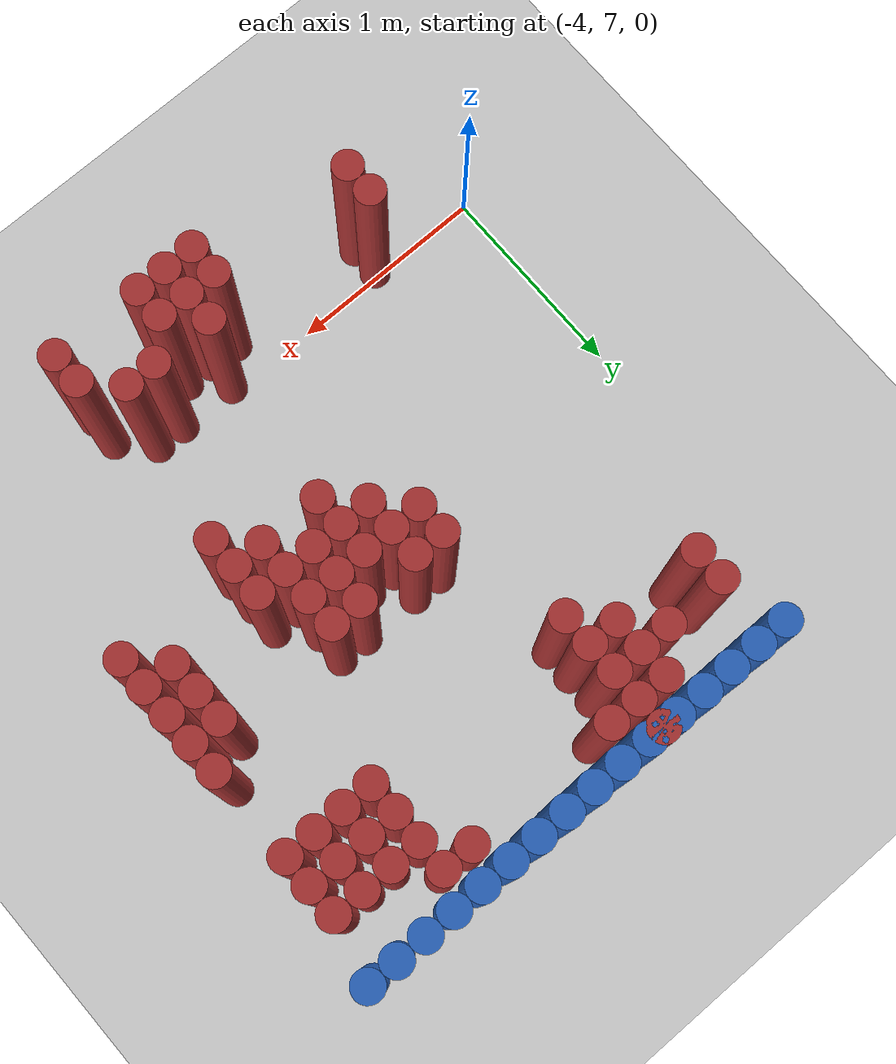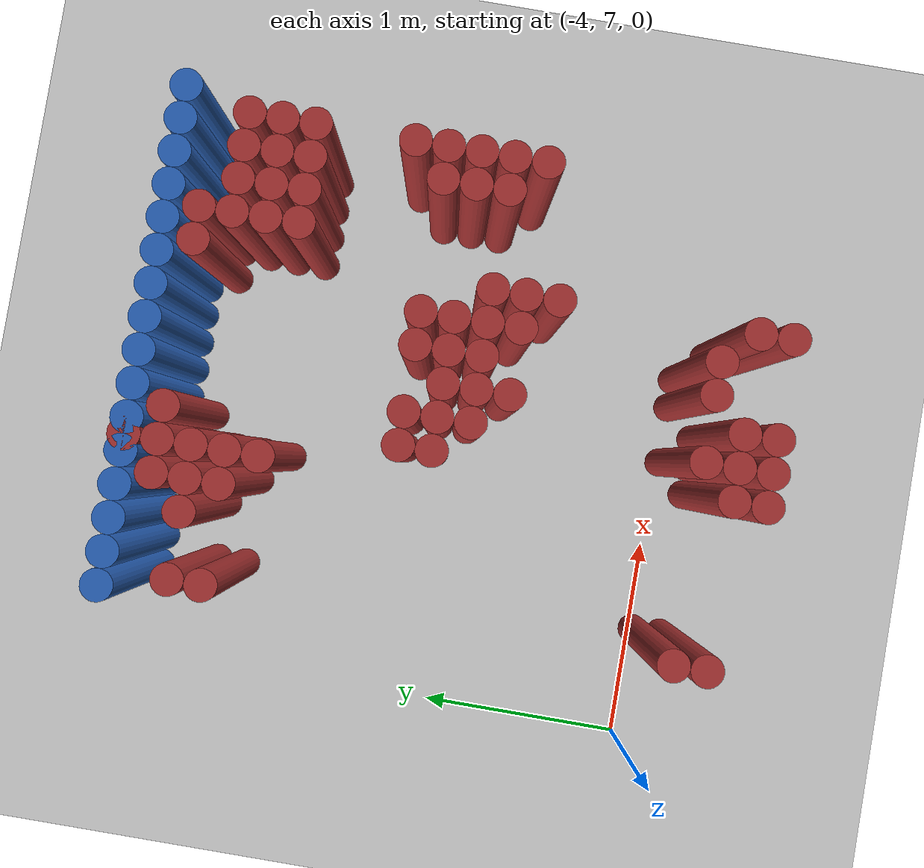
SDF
<sdf version="1.6">
 <world name="barn_world">
  <model name="ground_plane">
   <static>1</static>
   <link name="link">
    <collision name="collision">
     <geometry><plane><normal>0 0 1</normal><size>100 100</size></plane></geometry>
    </collision>
    <visual name="visual">
     <geometry><plane><normal>0 0 1</normal><size>100 100</size></plane></geometry>
     <material>
      <script><uri>file://media/materials/scripts/gazebo.material</uri><name>Gazebo/Grey</name></script>
     </material>
    </visual>
   </link>
  </model>
  <model name="unit_cylinder_227">
   <static>1</static>
   <pose>-3.4500 6.8250 0.5 0 0 0</pose>
   <link name="link">
    <collision name="collision">
     <geometry><cylinder><radius>0.075</radius><length>1</length></cylinder></geometry>
    </collision>
    <visual name="visual">
     <geometry><cylinder><radius>0.075</radius><length>1</length></cylinder></geometry>
     <material><ambient>0.648 0.192 0.192 1</ambient><diffuse>0.648 0.192 0.192 1</diffuse></material>
    </visual>
   </link>
  </model>
  <model name="unit_cylinder_228">
   <static>1</static>
   <pose>-3.4500 6.9750 0.5 0 0 0</pose>
   <link name="link">
    <collision name="collision">
     <geometry><cylinder><radius>0.075</radius><length>1</length></cylinder></geometry>
    </collision>
    <visual name="visual">
     <geometry><cylinder><radius>0.075</radius><length>1</length></cylinder></geometry>
     <material><ambient>0.648 0.192 0.192 1</ambient><diffuse>0.648 0.192 0.192 1</diffuse></material>
    </visual>
   </link>
  </model>
  <model name="unit_cylinder_229">
   <static>1</static>
   <pose>-3.4500 9.0750 0.5 0 0 0</pose>
   <link name="link">
    <collision name="collision">
     <geometry><cylinder><radius>0.075</radius><length>1</length></cylinder></geometry>
    </collision>
    <visual name="visual">
     <geometry><cylinder><radius>0.075</radius><length>1</length></cylinder></geometry>
     <material><ambient>0.648 0.192 0.192 1</ambient><diffuse>0.648 0.192 0.192 1</diffuse></material>
    </visual>
   </link>
  </model>
  <model name="unit_cylinder_230">
   <static>1</static>
   <pose>-3.4500 9.2250 0.5 0 0 0</pose>
   <link name="link">
    <collision name="collision">
     <geometry><cylinder><radius>0.075</radius><length>1</length></cylinder></geometry>
    </collision>
    <visual name="visual">
     <geometry><cylinder><radius>0.075</radius><length>1</length></cylinder></geometry>
     <material><ambient>0.648 0.192 0.192 1</ambient><diffuse>0.648 0.192 0.192 1</diffuse></material>
    </visual>
   </link>
  </model>
  <model name="unit_cylinder_231">
   <static>1</static>
   <pose>-3.1500 9.2250 0.5 0 0 0</pose>
   <link name="link">
    <collision name="collision">
     <geometry><cylinder><radius>0.075</radius><length>1</length></cylinder></geometry>
    </collision>
    <visual name="visual">
     <geometry><cylinder><radius>0.075</radius><length>1</length></cylinder></geometry>
     <material><ambient>0.648 0.192 0.192 1</ambient><diffuse>0.648 0.192 0.192 1</diffuse></material>
    </visual>
   </link>
  </model>
  <model name="unit_cylinder_235">
   <static>1</static>
   <pose>-3.0000 9.0750 0.5 0 0 0</pose>
   <link name="link">
    <collision name="collision">
     <geometry><cylinder><radius>0.075</radius><length>1</length></cylinder></geometry>
    </collision>
    <visual name="visual">
     <geometry><cylinder><radius>0.075</radius><length>1</length></cylinder></geometry>
     <material><ambient>0.648 0.192 0.192 1</ambient><diffuse>0.648 0.192 0.192 1</diffuse></material>
    </visual>
   </link>
  </model>
  <model name="unit_cylinder_236">
   <static>1</static>
   <pose>-3.0000 9.2250 0.5 0 0 0</pose>
   <link name="link">
    <collision name="collision">
     <geometry><cylinder><radius>0.075</radius><length>1</length></cylinder></geometry>
    </collision>
    <visual name="visual">
     <geometry><cylinder><radius>0.075</radius><length>1</length></cylinder></geometry>
     <material><ambient>0.648 0.192 0.192 1</ambient><diffuse>0.648 0.192 0.192 1</diffuse></material>
    </visual>
   </link>
  </model>
  <model name="unit_cylinder_237">
   <static>1</static>
   <pose>-3.0000 9.3750 0.5 0 0 0</pose>
   <link name="link">
    <collision name="collision">
     <geometry><cylinder><radius>0.075</radius><length>1</length></cylinder></geometry>
    </collision>
    <visual name="visual">
     <geometry><cylinder><radius>0.075</radius><length>1</length></cylinder></geometry>
     <material><ambient>0.648 0.192 0.192 1</ambient><diffuse>0.648 0.192 0.192 1</diffuse></material>
    </visual>
   </link>
  </model>
  <model name="unit_cylinder_244">
   <static>1</static>
   <pose>-2.8500 8.9250 0.5 0 0 0</pose>
   <link name="link">
    <collision name="collision">
     <geometry><cylinder><radius>0.075</radius><length>1</length></cylinder></geometry>
    </collision>
    <visual name="visual">
     <geometry><cylinder><radius>0.075</radius><length>1</length></cylinder></geometry>
     <material><ambient>0.648 0.192 0.192 1</ambient><diffuse>0.648 0.192 0.192 1</diffuse></material>
    </visual>
   </link>
  </model>
  <model name="unit_cylinder_245">
   <static>1</static>
   <pose>-2.8500 9.0750 0.5 0 0 0</pose>
   <link name="link">
    <collision name="collision">
     <geometry><cylinder><radius>0.075</radius><length>1</length></cylinder></geometry>
    </collision>
    <visual name="visual">
     <geometry><cylinder><radius>0.075</radius><length>1</length></cylinder></geometry>
     <material><ambient>0.648 0.192 0.192 1</ambient><diffuse>0.648 0.192 0.192 1</diffuse></material>
    </visual>
   </link>
  </model>
  <model name="unit_cylinder_246">
   <static>1</static>
   <pose>-2.8500 9.2250 0.5 0 0 0</pose>
   <link name="link">
    <collision name="collision">
     <geometry><cylinder><radius>0.075</radius><length>1</length></cylinder></geometry>
    </collision>
    <visual name="visual">
     <geometry><cylinder><radius>0.075</radius><length>1</length></cylinder></geometry>
     <material><ambient>0.648 0.192 0.192 1</ambient><diffuse>0.648 0.192 0.192 1</diffuse></material>
    </visual>
   </link>
  </model>
  <model name="unit_cylinder_247">
   <static>1</static>
   <pose>-2.8500 9.3750 0.5 0 0 0</pose>
   <link name="link">
    <collision name="collision">
     <geometry><cylinder><radius>0.075</radius><length>1</length></cylinder></geometry>
    </collision>
    <visual name="visual">
     <geometry><cylinder><radius>0.075</radius><length>1</length></cylinder></geometry>
     <material><ambient>0.648 0.192 0.192 1</ambient><diffuse>0.648 0.192 0.192 1</diffuse></material>
    </visual>
   </link>
  </model>
  <model name="unit_cylinder_248">
   <static>1</static>
   <pose>-2.8500 9.5250 0.5 0 0 0</pose>
   <link name="link">
    <collision name="collision">
     <geometry><cylinder><radius>0.075</radius><length>1</length></cylinder></geometry>
    </collision>
    <visual name="visual">
     <geometry><cylinder><radius>0.075</radius><length>1</length></cylinder></geometry>
     <material><ambient>0.648 0.192 0.192 1</ambient><diffuse>0.648 0.192 0.192 1</diffuse></material>
    </visual>
   </link>
  </model>
  <model name="unit_cylinder_252">
   <static>1</static>
   <pose>-2.7000 6.6750 0.5 0 0 0</pose>
   <link name="link">
    <collision name="collision">
     <geometry><cylinder><radius>0.075</radius><length>1</length></cylinder></geometry>
    </collision>
    <visual name="visual">
     <geometry><cylinder><radius>0.075</radius><length>1</length></cylinder></geometry>
     <material><ambient>0.648 0.192 0.192 1</ambient><diffuse>0.648 0.192 0.192 1</diffuse></material>
    </visual>
   </link>
  </model>
  <model name="unit_cylinder_253">
   <static>1</static>
   <pose>-2.7000 6.8250 0.5 0 0 0</pose>
   <link name="link">
    <collision name="collision">
     <geometry><cylinder><radius>0.075</radius><length>1</length></cylinder></geometry>
    </collision>
    <visual name="visual">
     <geometry><cylinder><radius>0.075</radius><length>1</length></cylinder></geometry>
     <material><ambient>0.648 0.192 0.192 1</ambient><diffuse>0.648 0.192 0.192 1</diffuse></material>
    </visual>
   </link>
  </model>
  <model name="unit_cylinder_254">
   <static>1</static>
   <pose>-2.7000 8.1750 0.5 0 0 0</pose>
   <link name="link">
    <collision name="collision">
     <geometry><cylinder><radius>0.075</radius><length>1</length></cylinder></geometry>
    </collision>
    <visual name="visual">
     <geometry><cylinder><radius>0.075</radius><length>1</length></cylinder></geometry>
     <material><ambient>0.648 0.192 0.192 1</ambient><diffuse>0.648 0.192 0.192 1</diffuse></material>
    </visual>
   </link>
  </model>
  <model name="unit_cylinder_255">
   <static>1</static>
   <pose>-2.7000 8.3250 0.5 0 0 0</pose>
   <link name="link">
    <collision name="collision">
     <geometry><cylinder><radius>0.075</radius><length>1</length></cylinder></geometry>
    </collision>
    <visual name="visual">
     <geometry><cylinder><radius>0.075</radius><length>1</length></cylinder></geometry>
     <material><ambient>0.648 0.192 0.192 1</ambient><diffuse>0.648 0.192 0.192 1</diffuse></material>
    </visual>
   </link>
  </model>
  <model name="unit_cylinder_256">
   <static>1</static>
   <pose>-2.7000 9.3750 0.5 0 0 0</pose>
   <link name="link">
    <collision name="collision">
     <geometry><cylinder><radius>0.075</radius><length>1</length></cylinder></geometry>
    </collision>
    <visual name="visual">
     <geometry><cylinder><radius>0.075</radius><length>1</length></cylinder></geometry>
     <material><ambient>0.648 0.192 0.192 1</ambient><diffuse>0.648 0.192 0.192 1</diffuse></material>
    </visual>
   </link>
  </model>
  <model name="unit_cylinder_259">
   <static>1</static>
   <pose>-2.5500 6.6750 0.5 0 0 0</pose>
   <link name="link">
    <collision name="collision">
     <geometry><cylinder><radius>0.075</radius><length>1</length></cylinder></geometry>
    </collision>
    <visual name="visual">
     <geometry><cylinder><radius>0.075</radius><length>1</length></cylinder></geometry>
     <material><ambient>0.648 0.192 0.192 1</ambient><diffuse>0.648 0.192 0.192 1</diffuse></material>
    </visual>
   </link>
  </model>
  <model name="unit_cylinder_260">
   <static>1</static>
   <pose>-2.5500 6.8250 0.5 0 0 0</pose>
   <link name="link">
    <collision name="collision">
     <geometry><cylinder><radius>0.075</radius><length>1</length></cylinder></geometry>
    </collision>
    <visual name="visual">
     <geometry><cylinder><radius>0.075</radius><length>1</length></cylinder></geometry>
     <material><ambient>0.648 0.192 0.192 1</ambient><diffuse>0.648 0.192 0.192 1</diffuse></material>
    </visual>
   </link>
  </model>
  <model name="unit_cylinder_261">
   <static>1</static>
   <pose>-2.5500 6.9750 0.5 0 0 0</pose>
   <link name="link">
    <collision name="collision">
     <geometry><cylinder><radius>0.075</radius><length>1</length></cylinder></geometry>
    </collision>
    <visual name="visual">
     <geometry><cylinder><radius>0.075</radius><length>1</length></cylinder></geometry>
     <material><ambient>0.648 0.192 0.192 1</ambient><diffuse>0.648 0.192 0.192 1</diffuse></material>
    </visual>
   </link>
  </model>
  <model name="unit_cylinder_262">
   <static>1</static>
   <pose>-2.5500 8.0250 0.5 0 0 0</pose>
   <link name="link">
    <collision name="collision">
     <geometry><cylinder><radius>0.075</radius><length>1</length></cylinder></geometry>
    </collision>
    <visual name="visual">
     <geometry><cylinder><radius>0.075</radius><length>1</length></cylinder></geometry>
     <material><ambient>0.648 0.192 0.192 1</ambient><diffuse>0.648 0.192 0.192 1</diffuse></material>
    </visual>
   </link>
  </model>
  <model name="unit_cylinder_263">
   <static>1</static>
   <pose>-2.5500 8.1750 0.5 0 0 0</pose>
   <link name="link">
    <collision name="collision">
     <geometry><cylinder><radius>0.075</radius><length>1</length></cylinder></geometry>
    </collision>
    <visual name="visual">
     <geometry><cylinder><radius>0.075</radius><length>1</length></cylinder></geometry>
     <material><ambient>0.648 0.192 0.192 1</ambient><diffuse>0.648 0.192 0.192 1</diffuse></material>
    </visual>
   </link>
  </model>
  <model name="unit_cylinder_264">
   <static>1</static>
   <pose>-2.5500 8.3250 0.5 0 0 0</pose>
   <link name="link">
    <collision name="collision">
     <geometry><cylinder><radius>0.075</radius><length>1</length></cylinder></geometry>
    </collision>
    <visual name="visual">
     <geometry><cylinder><radius>0.075</radius><length>1</length></cylinder></geometry>
     <material><ambient>0.648 0.192 0.192 1</ambient><diffuse>0.648 0.192 0.192 1</diffuse></material>
    </visual>
   </link>
  </model>
  <model name="unit_cylinder_266">
   <static>1</static>
   <pose>-2.4000 6.6750 0.5 0 0 0</pose>
   <link name="link">
    <collision name="collision">
     <geometry><cylinder><radius>0.075</radius><length>1</length></cylinder></geometry>
    </collision>
    <visual name="visual">
     <geometry><cylinder><radius>0.075</radius><length>1</length></cylinder></geometry>
     <material><ambient>0.648 0.192 0.192 1</ambient><diffuse>0.648 0.192 0.192 1</diffuse></material>
    </visual>
   </link>
  </model>
  <model name="unit_cylinder_267">
   <static>1</static>
   <pose>-2.4000 6.8250 0.5 0 0 0</pose>
   <link name="link">
    <collision name="collision">
     <geometry><cylinder><radius>0.075</radius><length>1</length></cylinder></geometry>
    </collision>
    <visual name="visual">
     <geometry><cylinder><radius>0.075</radius><length>1</length></cylinder></geometry>
     <material><ambient>0.648 0.192 0.192 1</ambient><diffuse>0.648 0.192 0.192 1</diffuse></material>
    </visual>
   </link>
  </model>
  <model name="unit_cylinder_268">
   <static>1</static>
   <pose>-2.4000 7.8750 0.5 0 0 0</pose>
   <link name="link">
    <collision name="collision">
     <geometry><cylinder><radius>0.075</radius><length>1</length></cylinder></geometry>
    </collision>
    <visual name="visual">
     <geometry><cylinder><radius>0.075</radius><length>1</length></cylinder></geometry>
     <material><ambient>0.648 0.192 0.192 1</ambient><diffuse>0.648 0.192 0.192 1</diffuse></material>
    </visual>
   </link>
  </model>
  <model name="unit_cylinder_269">
   <static>1</static>
   <pose>-2.4000 8.0250 0.5 0 0 0</pose>
   <link name="link">
    <collision name="collision">
     <geometry><cylinder><radius>0.075</radius><length>1</length></cylinder></geometry>
    </collision>
    <visual name="visual">
     <geometry><cylinder><radius>0.075</radius><length>1</length></cylinder></geometry>
     <material><ambient>0.648 0.192 0.192 1</ambient><diffuse>0.648 0.192 0.192 1</diffuse></material>
    </visual>
   </link>
  </model>
  <model name="unit_cylinder_270">
   <static>1</static>
   <pose>-2.4000 8.1750 0.5 0 0 0</pose>
   <link name="link">
    <collision name="collision">
     <geometry><cylinder><radius>0.075</radius><length>1</length></cylinder></geometry>
    </collision>
    <visual name="visual">
     <geometry><cylinder><radius>0.075</radius><length>1</length></cylinder></geometry>
     <material><ambient>0.648 0.192 0.192 1</ambient><diffuse>0.648 0.192 0.192 1</diffuse></material>
    </visual>
   </link>
  </model>
  <model name="unit_cylinder_272">
   <static>1</static>
   <pose>-2.2500 6.9750 0.5 0 0 0</pose>
   <link name="link">
    <collision name="collision">
     <geometry><cylinder><radius>0.075</radius><length>1</length></cylinder></geometry>
    </collision>
    <visual name="visual">
     <geometry><cylinder><radius>0.075</radius><length>1</length></cylinder></geometry>
     <material><ambient>0.648 0.192 0.192 1</ambient><diffuse>0.648 0.192 0.192 1</diffuse></material>
    </visual>
   </link>
  </model>
  <model name="unit_cylinder_273">
   <static>1</static>
   <pose>-2.2500 8.0250 0.5 0 0 0</pose>
   <link name="link">
    <collision name="collision">
     <geometry><cylinder><radius>0.075</radius><length>1</length></cylinder></geometry>
    </collision>
    <visual name="visual">
     <geometry><cylinder><radius>0.075</radius><length>1</length></cylinder></geometry>
     <material><ambient>0.648 0.192 0.192 1</ambient><diffuse>0.648 0.192 0.192 1</diffuse></material>
    </visual>
   </link>
  </model>
  <model name="unit_cylinder_274">
   <static>1</static>
   <pose>-2.2500 8.1750 0.5 0 0 0</pose>
   <link name="link">
    <collision name="collision">
     <geometry><cylinder><radius>0.075</radius><length>1</length></cylinder></geometry>
    </collision>
    <visual name="visual">
     <geometry><cylinder><radius>0.075</radius><length>1</length></cylinder></geometry>
     <material><ambient>0.648 0.192 0.192 1</ambient><diffuse>0.648 0.192 0.192 1</diffuse></material>
    </visual>
   </link>
  </model>
  <model name="unit_cylinder_275">
   <static>1</static>
   <pose>-2.2500 8.3250 0.5 0 0 0</pose>
   <link name="link">
    <collision name="collision">
     <geometry><cylinder><radius>0.075</radius><length>1</length></cylinder></geometry>
    </collision>
    <visual name="visual">
     <geometry><cylinder><radius>0.075</radius><length>1</length></cylinder></geometry>
     <material><ambient>0.648 0.192 0.192 1</ambient><diffuse>0.648 0.192 0.192 1</diffuse></material>
    </visual>
   </link>
  </model>
  <model name="unit_cylinder_277">
   <static>1</static>
   <pose>-2.1000 6.9750 0.5 0 0 0</pose>
   <link name="link">
    <collision name="collision">
     <geometry><cylinder><radius>0.075</radius><length>1</length></cylinder></geometry>
    </collision>
    <visual name="visual">
     <geometry><cylinder><radius>0.075</radius><length>1</length></cylinder></geometry>
     <material><ambient>0.648 0.192 0.192 1</ambient><diffuse>0.648 0.192 0.192 1</diffuse></material>
    </visual>
   </link>
  </model>
  <model name="unit_cylinder_278">
   <static>1</static>
   <pose>-2.1000 7.8750 0.5 0 0 0</pose>
   <link name="link">
    <collision name="collision">
     <geometry><cylinder><radius>0.075</radius><length>1</length></cylinder></geometry>
    </collision>
    <visual name="visual">
     <geometry><cylinder><radius>0.075</radius><length>1</length></cylinder></geometry>
     <material><ambient>0.648 0.192 0.192 1</ambient><diffuse>0.648 0.192 0.192 1</diffuse></material>
    </visual>
   </link>
  </model>
  <model name="unit_cylinder_279">
   <static>1</static>
   <pose>-2.1000 8.0250 0.5 0 0 0</pose>
   <link name="link">
    <collision name="collision">
     <geometry><cylinder><radius>0.075</radius><length>1</length></cylinder></geometry>
    </collision>
    <visual name="visual">
     <geometry><cylinder><radius>0.075</radius><length>1</length></cylinder></geometry>
     <material><ambient>0.648 0.192 0.192 1</ambient><diffuse>0.648 0.192 0.192 1</diffuse></material>
    </visual>
   </link>
  </model>
  <model name="unit_cylinder_280">
   <static>1</static>
   <pose>-2.1000 8.1750 0.5 0 0 0</pose>
   <link name="link">
    <collision name="collision">
     <geometry><cylinder><radius>0.075</radius><length>1</length></cylinder></geometry>
    </collision>
    <visual name="visual">
     <geometry><cylinder><radius>0.075</radius><length>1</length></cylinder></geometry>
     <material><ambient>0.648 0.192 0.192 1</ambient><diffuse>0.648 0.192 0.192 1</diffuse></material>
    </visual>
   </link>
  </model>
  <model name="unit_cylinder_281">
   <static>1</static>
   <pose>-2.1000 8.3250 0.5 0 0 0</pose>
   <link name="link">
    <collision name="collision">
     <geometry><cylinder><radius>0.075</radius><length>1</length></cylinder></geometry>
    </collision>
    <visual name="visual">
     <geometry><cylinder><radius>0.075</radius><length>1</length></cylinder></geometry>
     <material><ambient>0.648 0.192 0.192 1</ambient><diffuse>0.648 0.192 0.192 1</diffuse></material>
    </visual>
   </link>
  </model>
  <model name="unit_cylinder_282">
   <static>1</static>
   <pose>-1.9500 6.6750 0.5 0 0 0</pose>
   <link name="link">
    <collision name="collision">
     <geometry><cylinder><radius>0.075</radius><length>1</length></cylinder></geometry>
    </collision>
    <visual name="visual">
     <geometry><cylinder><radius>0.075</radius><length>1</length></cylinder></geometry>
     <material><ambient>0.648 0.192 0.192 1</ambient><diffuse>0.648 0.192 0.192 1</diffuse></material>
    </visual>
   </link>
  </model>
  <model name="unit_cylinder_283">
   <static>1</static>
   <pose>-1.9500 6.8250 0.5 0 0 0</pose>
   <link name="link">
    <collision name="collision">
     <geometry><cylinder><radius>0.075</radius><length>1</length></cylinder></geometry>
    </collision>
    <visual name="visual">
     <geometry><cylinder><radius>0.075</radius><length>1</length></cylinder></geometry>
     <material><ambient>0.648 0.192 0.192 1</ambient><diffuse>0.648 0.192 0.192 1</diffuse></material>
    </visual>
   </link>
  </model>
  <model name="unit_cylinder_284">
   <static>1</static>
   <pose>-1.9500 7.7250 0.5 0 0 0</pose>
   <link name="link">
    <collision name="collision">
     <geometry><cylinder><radius>0.075</radius><length>1</length></cylinder></geometry>
    </collision>
    <visual name="visual">
     <geometry><cylinder><radius>0.075</radius><length>1</length></cylinder></geometry>
     <material><ambient>0.648 0.192 0.192 1</ambient><diffuse>0.648 0.192 0.192 1</diffuse></material>
    </visual>
   </link>
  </model>
  <model name="unit_cylinder_285">
   <static>1</static>
   <pose>-1.9500 7.8750 0.5 0 0 0</pose>
   <link name="link">
    <collision name="collision">
     <geometry><cylinder><radius>0.075</radius><length>1</length></cylinder></geometry>
    </collision>
    <visual name="visual">
     <geometry><cylinder><radius>0.075</radius><length>1</length></cylinder></geometry>
     <material><ambient>0.648 0.192 0.192 1</ambient><diffuse>0.648 0.192 0.192 1</diffuse></material>
    </visual>
   </link>
  </model>
  <model name="unit_cylinder_286">
   <static>1</static>
   <pose>-1.9500 8.0250 0.5 0 0 0</pose>
   <link name="link">
    <collision name="collision">
     <geometry><cylinder><radius>0.075</radius><length>1</length></cylinder></geometry>
    </collision>
    <visual name="visual">
     <geometry><cylinder><radius>0.075</radius><length>1</length></cylinder></geometry>
     <material><ambient>0.648 0.192 0.192 1</ambient><diffuse>0.648 0.192 0.192 1</diffuse></material>
    </visual>
   </link>
  </model>
  <model name="unit_cylinder_287">
   <static>1</static>
   <pose>-1.9500 9.3750 0.5 0 0 0</pose>
   <link name="link">
    <collision name="collision">
     <geometry><cylinder><radius>0.075</radius><length>1</length></cylinder></geometry>
    </collision>
    <visual name="visual">
     <geometry><cylinder><radius>0.075</radius><length>1</length></cylinder></geometry>
     <material><ambient>0.648 0.192 0.192 1</ambient><diffuse>0.648 0.192 0.192 1</diffuse></material>
    </visual>
   </link>
  </model>
  <model name="unit_cylinder_291">
   <static>1</static>
   <pose>-1.8000 8.9250 0.5 0 0 0</pose>
   <link name="link">
    <collision name="collision">
     <geometry><cylinder><radius>0.075</radius><length>1</length></cylinder></geometry>
    </collision>
    <visual name="visual">
     <geometry><cylinder><radius>0.075</radius><length>1</length></cylinder></geometry>
     <material><ambient>0.648 0.192 0.192 1</ambient><diffuse>0.648 0.192 0.192 1</diffuse></material>
    </visual>
   </link>
  </model>
  <model name="unit_cylinder_292">
   <static>1</static>
   <pose>-1.8000 9.0750 0.5 0 0 0</pose>
   <link name="link">
    <collision name="collision">
     <geometry><cylinder><radius>0.075</radius><length>1</length></cylinder></geometry>
    </collision>
    <visual name="visual">
     <geometry><cylinder><radius>0.075</radius><length>1</length></cylinder></geometry>
     <material><ambient>0.648 0.192 0.192 1</ambient><diffuse>0.648 0.192 0.192 1</diffuse></material>
    </visual>
   </link>
  </model>
  <model name="unit_cylinder_293">
   <static>1</static>
   <pose>-1.8000 9.2250 0.5 0 0 0</pose>
   <link name="link">
    <collision name="collision">
     <geometry><cylinder><radius>0.075</radius><length>1</length></cylinder></geometry>
    </collision>
    <visual name="visual">
     <geometry><cylinder><radius>0.075</radius><length>1</length></cylinder></geometry>
     <material><ambient>0.648 0.192 0.192 1</ambient><diffuse>0.648 0.192 0.192 1</diffuse></material>
    </visual>
   </link>
  </model>
  <model name="unit_cylinder_294">
   <static>1</static>
   <pose>-1.8000 9.3750 0.5 0 0 0</pose>
   <link name="link">
    <collision name="collision">
     <geometry><cylinder><radius>0.075</radius><length>1</length></cylinder></geometry>
    </collision>
    <visual name="visual">
     <geometry><cylinder><radius>0.075</radius><length>1</length></cylinder></geometry>
     <material><ambient>0.648 0.192 0.192 1</ambient><diffuse>0.648 0.192 0.192 1</diffuse></material>
    </visual>
   </link>
  </model>
  <model name="unit_cylinder_296">
   <static>1</static>
   <pose>-1.6500 8.9250 0.5 0 0 0</pose>
   <link name="link">
    <collision name="collision">
     <geometry><cylinder><radius>0.075</radius><length>1</length></cylinder></geometry>
    </collision>
    <visual name="visual">
     <geometry><cylinder><radius>0.075</radius><length>1</length></cylinder></geometry>
     <material><ambient>0.648 0.192 0.192 1</ambient><diffuse>0.648 0.192 0.192 1</diffuse></material>
    </visual>
   </link>
  </model>
  <model name="unit_cylinder_297">
   <static>1</static>
   <pose>-1.6500 9.0750 0.5 0 0 0</pose>
   <link name="link">
    <collision name="collision">
     <geometry><cylinder><radius>0.075</radius><length>1</length></cylinder></geometry>
    </collision>
    <visual name="visual">
     <geometry><cylinder><radius>0.075</radius><length>1</length></cylinder></geometry>
     <material><ambient>0.648 0.192 0.192 1</ambient><diffuse>0.648 0.192 0.192 1</diffuse></material>
    </visual>
   </link>
  </model>
  <model name="unit_cylinder_298">
   <static>1</static>
   <pose>-1.6500 9.2250 0.5 0 0 0</pose>
   <link name="link">
    <collision name="collision">
     <geometry><cylinder><radius>0.075</radius><length>1</length></cylinder></geometry>
    </collision>
    <visual name="visual">
     <geometry><cylinder><radius>0.075</radius><length>1</length></cylinder></geometry>
     <material><ambient>0.648 0.192 0.192 1</ambient><diffuse>0.648 0.192 0.192 1</diffuse></material>
    </visual>
   </link>
  </model>
  <model name="unit_cylinder_299">
   <static>1</static>
   <pose>-1.5000 8.0250 0.5 0 0 0</pose>
   <link name="link">
    <collision name="collision">
     <geometry><cylinder><radius>0.075</radius><length>1</length></cylinder></geometry>
    </collision>
    <visual name="visual">
     <geometry><cylinder><radius>0.075</radius><length>1</length></cylinder></geometry>
     <material><ambient>0.648 0.192 0.192 1</ambient><diffuse>0.648 0.192 0.192 1</diffuse></material>
    </visual>
   </link>
  </model>
  <model name="unit_cylinder_300">
   <static>1</static>
   <pose>-1.5000 8.1750 0.5 0 0 0</pose>
   <link name="link">
    <collision name="collision">
     <geometry><cylinder><radius>0.075</radius><length>1</length></cylinder></geometry>
    </collision>
    <visual name="visual">
     <geometry><cylinder><radius>0.075</radius><length>1</length></cylinder></geometry>
     <material><ambient>0.648 0.192 0.192 1</ambient><diffuse>0.648 0.192 0.192 1</diffuse></material>
    </visual>
   </link>
  </model>
  <model name="unit_cylinder_301">
   <static>1</static>
   <pose>-1.5000 8.3250 0.5 0 0 0</pose>
   <link name="link">
    <collision name="collision">
     <geometry><cylinder><radius>0.075</radius><length>1</length></cylinder></geometry>
    </collision>
    <visual name="visual">
     <geometry><cylinder><radius>0.075</radius><length>1</length></cylinder></geometry>
     <material><ambient>0.648 0.192 0.192 1</ambient><diffuse>0.648 0.192 0.192 1</diffuse></material>
    </visual>
   </link>
  </model>
  <model name="unit_cylinder_302">
   <static>1</static>
   <pose>-1.5000 8.9250 0.5 0 0 0</pose>
   <link name="link">
    <collision name="collision">
     <geometry><cylinder><radius>0.075</radius><length>1</length></cylinder></geometry>
    </collision>
    <visual name="visual">
     <geometry><cylinder><radius>0.075</radius><length>1</length></cylinder></geometry>
     <material><ambient>0.648 0.192 0.192 1</ambient><diffuse>0.648 0.192 0.192 1</diffuse></material>
    </visual>
   </link>
  </model>
  <model name="unit_cylinder_303">
   <static>1</static>
   <pose>-1.5000 9.0750 0.5 0 0 0</pose>
   <link name="link">
    <collision name="collision">
     <geometry><cylinder><radius>0.075</radius><length>1</length></cylinder></geometry>
    </collision>
    <visual name="visual">
     <geometry><cylinder><radius>0.075</radius><length>1</length></cylinder></geometry>
     <material><ambient>0.648 0.192 0.192 1</ambient><diffuse>0.648 0.192 0.192 1</diffuse></material>
    </visual>
   </link>
  </model>
  <model name="unit_cylinder_304">
   <static>1</static>
   <pose>-1.5000 9.2250 0.5 0 0 0</pose>
   <link name="link">
    <collision name="collision">
     <geometry><cylinder><radius>0.075</radius><length>1</length></cylinder></geometry>
    </collision>
    <visual name="visual">
     <geometry><cylinder><radius>0.075</radius><length>1</length></cylinder></geometry>
     <material><ambient>0.648 0.192 0.192 1</ambient><diffuse>0.648 0.192 0.192 1</diffuse></material>
    </visual>
   </link>
  </model>
  <model name="unit_cylinder_306">
   <static>1</static>
   <pose>-1.3500 7.8750 0.5 0 0 0</pose>
   <link name="link">
    <collision name="collision">
     <geometry><cylinder><radius>0.075</radius><length>1</length></cylinder></geometry>
    </collision>
    <visual name="visual">
     <geometry><cylinder><radius>0.075</radius><length>1</length></cylinder></geometry>
     <material><ambient>0.648 0.192 0.192 1</ambient><diffuse>0.648 0.192 0.192 1</diffuse></material>
    </visual>
   </link>
  </model>
  <model name="unit_cylinder_307">
   <static>1</static>
   <pose>-1.3500 8.0250 0.5 0 0 0</pose>
   <link name="link">
    <collision name="collision">
     <geometry><cylinder><radius>0.075</radius><length>1</length></cylinder></geometry>
    </collision>
    <visual name="visual">
     <geometry><cylinder><radius>0.075</radius><length>1</length></cylinder></geometry>
     <material><ambient>0.648 0.192 0.192 1</ambient><diffuse>0.648 0.192 0.192 1</diffuse></material>
    </visual>
   </link>
  </model>
  <model name="unit_cylinder_308">
   <static>1</static>
   <pose>-1.3500 8.1750 0.5 0 0 0</pose>
   <link name="link">
    <collision name="collision">
     <geometry><cylinder><radius>0.075</radius><length>1</length></cylinder></geometry>
    </collision>
    <visual name="visual">
     <geometry><cylinder><radius>0.075</radius><length>1</length></cylinder></geometry>
     <material><ambient>0.648 0.192 0.192 1</ambient><diffuse>0.648 0.192 0.192 1</diffuse></material>
    </visual>
   </link>
  </model>
  <model name="unit_cylinder_309">
   <static>1</static>
   <pose>-1.3500 8.3250 0.5 0 0 0</pose>
   <link name="link">
    <collision name="collision">
     <geometry><cylinder><radius>0.075</radius><length>1</length></cylinder></geometry>
    </collision>
    <visual name="visual">
     <geometry><cylinder><radius>0.075</radius><length>1</length></cylinder></geometry>
     <material><ambient>0.648 0.192 0.192 1</ambient><diffuse>0.648 0.192 0.192 1</diffuse></material>
    </visual>
   </link>
  </model>
  <model name="unit_cylinder_310">
   <static>1</static>
   <pose>-1.3500 8.4750 0.5 0 0 0</pose>
   <link name="link">
    <collision name="collision">
     <geometry><cylinder><radius>0.075</radius><length>1</length></cylinder></geometry>
    </collision>
    <visual name="visual">
     <geometry><cylinder><radius>0.075</radius><length>1</length></cylinder></geometry>
     <material><ambient>0.648 0.192 0.192 1</ambient><diffuse>0.648 0.192 0.192 1</diffuse></material>
    </visual>
   </link>
  </model>
  <model name="unit_cylinder_311">
   <static>1</static>
   <pose>-1.3500 8.9250 0.5 0 0 0</pose>
   <link name="link">
    <collision name="collision">
     <geometry><cylinder><radius>0.075</radius><length>1</length></cylinder></geometry>
    </collision>
    <visual name="visual">
     <geometry><cylinder><radius>0.075</radius><length>1</length></cylinder></geometry>
     <material><ambient>0.648 0.192 0.192 1</ambient><diffuse>0.648 0.192 0.192 1</diffuse></material>
    </visual>
   </link>
  </model>
  <model name="unit_cylinder_312">
   <static>1</static>
   <pose>-1.3500 9.0750 0.5 0 0 0</pose>
   <link name="link">
    <collision name="collision">
     <geometry><cylinder><radius>0.075</radius><length>1</length></cylinder></geometry>
    </collision>
    <visual name="visual">
     <geometry><cylinder><radius>0.075</radius><length>1</length></cylinder></geometry>
     <material><ambient>0.648 0.192 0.192 1</ambient><diffuse>0.648 0.192 0.192 1</diffuse></material>
    </visual>
   </link>
  </model>
  <model name="unit_cylinder_313">
   <static>1</static>
   <pose>-1.3500 9.2250 0.5 0 0 0</pose>
   <link name="link">
    <collision name="collision">
     <geometry><cylinder><radius>0.075</radius><length>1</length></cylinder></geometry>
    </collision>
    <visual name="visual">
     <geometry><cylinder><radius>0.075</radius><length>1</length></cylinder></geometry>
     <material><ambient>0.648 0.192 0.192 1</ambient><diffuse>0.648 0.192 0.192 1</diffuse></material>
    </visual>
   </link>
  </model>
  <model name="unit_cylinder_409">
   <static>1</static>
   <pose>-1.2750 9.5250 0.5 0 0 0</pose>
   <link name="link">
    <collision name="collision">
     <geometry><cylinder><radius>0.075</radius><length>1</length></cylinder></geometry>
    </collision>
    <visual name="visual">
     <geometry><cylinder><radius>0.075</radius><length>1</length></cylinder></geometry>
     <material><ambient>0.152 0.379 0.72 1</ambient><diffuse>0.152 0.379 0.72 1</diffuse></material>
    </visual>
   </link>
  </model>
  <model name="unit_cylinder_410">
   <static>1</static>
   <pose>-1.4250 9.5250 0.5 0 0 0</pose>
   <link name="link">
    <collision name="collision">
     <geometry><cylinder><radius>0.075</radius><length>1</length></cylinder></geometry>
    </collision>
    <visual name="visual">
     <geometry><cylinder><radius>0.075</radius><length>1</length></cylinder></geometry>
     <material><ambient>0.152 0.379 0.72 1</ambient><diffuse>0.152 0.379 0.72 1</diffuse></material>
    </visual>
   </link>
  </model>
  <model name="unit_cylinder_411">
   <static>1</static>
   <pose>-1.5750 9.5250 0.5 0 0 0</pose>
   <link name="link">
    <collision name="collision">
     <geometry><cylinder><radius>0.075</radius><length>1</length></cylinder></geometry>
    </collision>
    <visual name="visual">
     <geometry><cylinder><radius>0.075</radius><length>1</length></cylinder></geometry>
     <material><ambient>0.152 0.379 0.72 1</ambient><diffuse>0.152 0.379 0.72 1</diffuse></material>
    </visual>
   </link>
  </model>
  <model name="unit_cylinder_412">
   <static>1</static>
   <pose>-1.7250 9.5250 0.5 0 0 0</pose>
   <link name="link">
    <collision name="collision">
     <geometry><cylinder><radius>0.075</radius><length>1</length></cylinder></geometry>
    </collision>
    <visual name="visual">
     <geometry><cylinder><radius>0.075</radius><length>1</length></cylinder></geometry>
     <material><ambient>0.152 0.379 0.72 1</ambient><diffuse>0.152 0.379 0.72 1</diffuse></material>
    </visual>
   </link>
  </model>
  <model name="unit_cylinder_413">
   <static>1</static>
   <pose>-1.8750 9.5250 0.5 0 0 0</pose>
   <link name="link">
    <collision name="collision">
     <geometry><cylinder><radius>0.075</radius><length>1</length></cylinder></geometry>
    </collision>
    <visual name="visual">
     <geometry><cylinder><radius>0.075</radius><length>1</length></cylinder></geometry>
     <material><ambient>0.152 0.379 0.72 1</ambient><diffuse>0.152 0.379 0.72 1</diffuse></material>
    </visual>
   </link>
  </model>
  <model name="unit_cylinder_414">
   <static>1</static>
   <pose>-2.0250 9.5250 0.5 0 0 0</pose>
   <link name="link">
    <collision name="collision">
     <geometry><cylinder><radius>0.075</radius><length>1</length></cylinder></geometry>
    </collision>
    <visual name="visual">
     <geometry><cylinder><radius>0.075</radius><length>1</length></cylinder></geometry>
     <material><ambient>0.152 0.379 0.72 1</ambient><diffuse>0.152 0.379 0.72 1</diffuse></material>
    </visual>
   </link>
  </model>
  <model name="unit_cylinder_415">
   <static>1</static>
   <pose>-2.1750 9.5250 0.5 0 0 0</pose>
   <link name="link">
    <collision name="collision">
     <geometry><cylinder><radius>0.075</radius><length>1</length></cylinder></geometry>
    </collision>
    <visual name="visual">
     <geometry><cylinder><radius>0.075</radius><length>1</length></cylinder></geometry>
     <material><ambient>0.152 0.379 0.72 1</ambient><diffuse>0.152 0.379 0.72 1</diffuse></material>
    </visual>
   </link>
  </model>
  <model name="unit_cylinder_416">
   <static>1</static>
   <pose>-2.3250 9.5250 0.5 0 0 0</pose>
   <link name="link">
    <collision name="collision">
     <geometry><cylinder><radius>0.075</radius><length>1</length></cylinder></geometry>
    </collision>
    <visual name="visual">
     <geometry><cylinder><radius>0.075</radius><length>1</length></cylinder></geometry>
     <material><ambient>0.152 0.379 0.72 1</ambient><diffuse>0.152 0.379 0.72 1</diffuse></material>
    </visual>
   </link>
  </model>
  <model name="unit_cylinder_417">
   <static>1</static>
   <pose>-2.4750 9.5250 0.5 0 0 0</pose>
   <link name="link">
    <collision name="collision">
     <geometry><cylinder><radius>0.075</radius><length>1</length></cylinder></geometry>
    </collision>
    <visual name="visual">
     <geometry><cylinder><radius>0.075</radius><length>1</length></cylinder></geometry>
     <material><ambient>0.152 0.379 0.72 1</ambient><diffuse>0.152 0.379 0.72 1</diffuse></material>
    </visual>
   </link>
  </model>
  <model name="unit_cylinder_418">
   <static>1</static>
   <pose>-2.6250 9.5250 0.5 0 0 0</pose>
   <link name="link">
    <collision name="collision">
     <geometry><cylinder><radius>0.075</radius><length>1</length></cylinder></geometry>
    </collision>
    <visual name="visual">
     <geometry><cylinder><radius>0.075</radius><length>1</length></cylinder></geometry>
     <material><ambient>0.152 0.379 0.72 1</ambient><diffuse>0.152 0.379 0.72 1</diffuse></material>
    </visual>
   </link>
  </model>
  <model name="unit_cylinder_419">
   <static>1</static>
   <pose>-2.7750 9.5250 0.5 0 0 0</pose>
   <link name="link">
    <collision name="collision">
     <geometry><cylinder><radius>0.075</radius><length>1</length></cylinder></geometry>
    </collision>
    <visual name="visual">
     <geometry><cylinder><radius>0.075</radius><length>1</length></cylinder></geometry>
     <material><ambient>0.152 0.379 0.72 1</ambient><diffuse>0.152 0.379 0.72 1</diffuse></material>
    </visual>
   </link>
  </model>
  <model name="unit_cylinder_420">
   <static>1</static>
   <pose>-2.9250 9.5250 0.5 0 0 0</pose>
   <link name="link">
    <collision name="collision">
     <geometry><cylinder><radius>0.075</radius><length>1</length></cylinder></geometry>
    </collision>
    <visual name="visual">
     <geometry><cylinder><radius>0.075</radius><length>1</length></cylinder></geometry>
     <material><ambient>0.152 0.379 0.72 1</ambient><diffuse>0.152 0.379 0.72 1</diffuse></material>
    </visual>
   </link>
  </model>
  <model name="unit_cylinder_421">
   <static>1</static>
   <pose>-3.0750 9.5250 0.5 0 0 0</pose>
   <link name="link">
    <collision name="collision">
     <geometry><cylinder><radius>0.075</radius><length>1</length></cylinder></geometry>
    </collision>
    <visual name="visual">
     <geometry><cylinder><radius>0.075</radius><length>1</length></cylinder></geometry>
     <material><ambient>0.152 0.379 0.72 1</ambient><diffuse>0.152 0.379 0.72 1</diffuse></material>
    </visual>
   </link>
  </model>
  <model name="unit_cylinder_422">
   <static>1</static>
   <pose>-3.2250 9.5250 0.5 0 0 0</pose>
   <link name="link">
    <collision name="collision">
     <geometry><cylinder><radius>0.075</radius><length>1</length></cylinder></geometry>
    </collision>
    <visual name="visual">
     <geometry><cylinder><radius>0.075</radius><length>1</length></cylinder></geometry>
     <material><ambient>0.152 0.379 0.72 1</ambient><diffuse>0.152 0.379 0.72 1</diffuse></material>
    </visual>
   </link>
  </model>
  <model name="unit_cylinder_423">
   <static>1</static>
   <pose>-3.3750 9.5250 0.5 0 0 0</pose>
   <link name="link">
    <collision name="collision">
     <geometry><cylinder><radius>0.075</radius><length>1</length></cylinder></geometry>
    </collision>
    <visual name="visual">
     <geometry><cylinder><radius>0.075</radius><length>1</length></cylinder></geometry>
     <material><ambient>0.152 0.379 0.72 1</ambient><diffuse>0.152 0.379 0.72 1</diffuse></material>
    </visual>
   </link>
  </model>
  <model name="unit_cylinder_424">
   <static>1</static>
   <pose>-3.5250 9.5250 0.5 0 0 0</pose>
   <link name="link">
    <collision name="collision">
     <geometry><cylinder><radius>0.075</radius><length>1</length></cylinder></geometry>
    </collision>
    <visual name="visual">
     <geometry><cylinder><radius>0.075</radius><length>1</length></cylinder></geometry>
     <material><ambient>0.152 0.379 0.72 1</ambient><diffuse>0.152 0.379 0.72 1</diffuse></material>
    </visual>
   </link>
  </model>
 </world>
</sdf>
